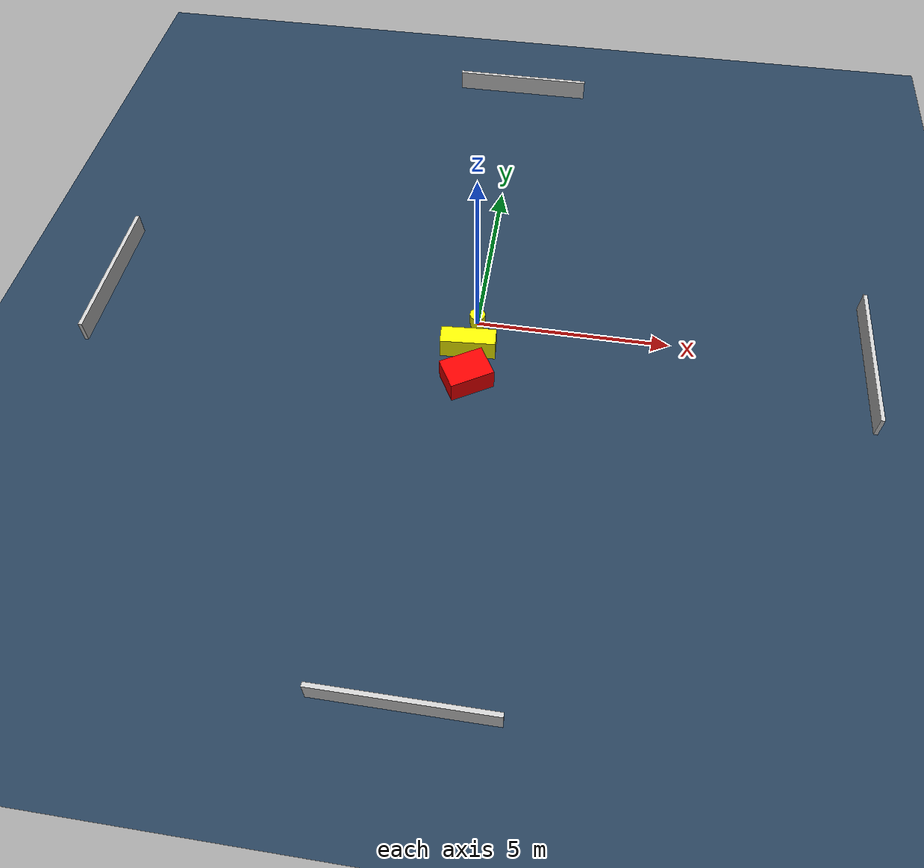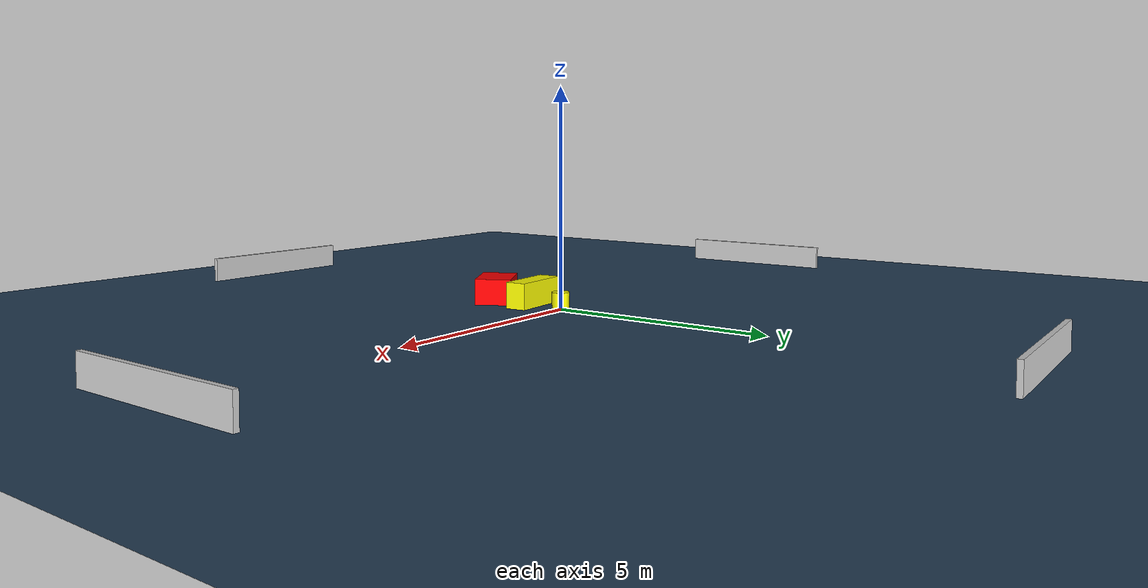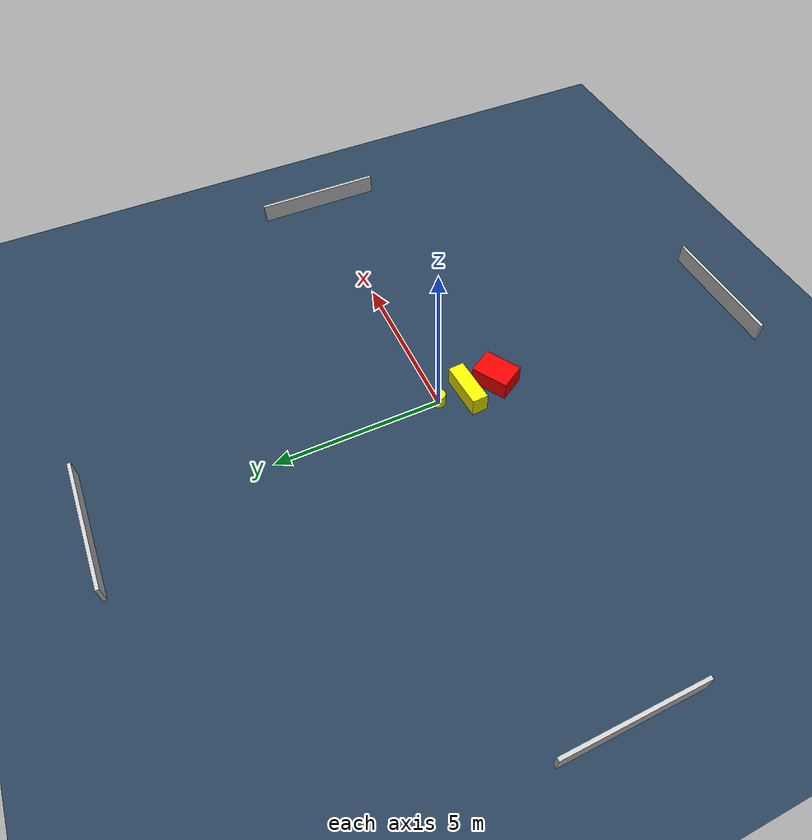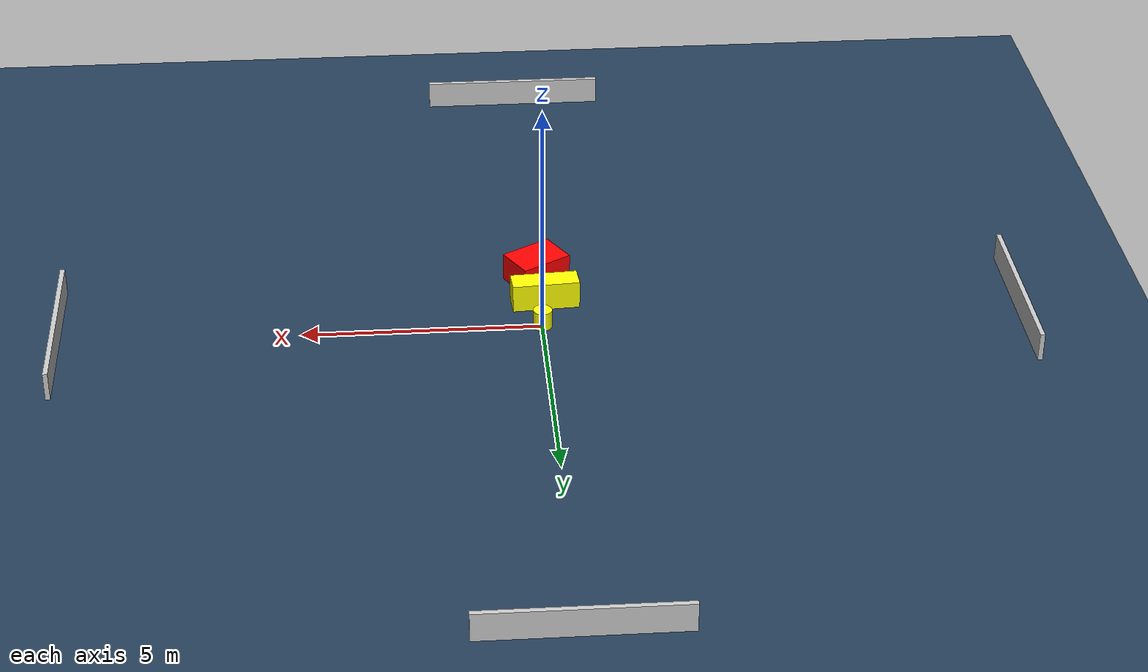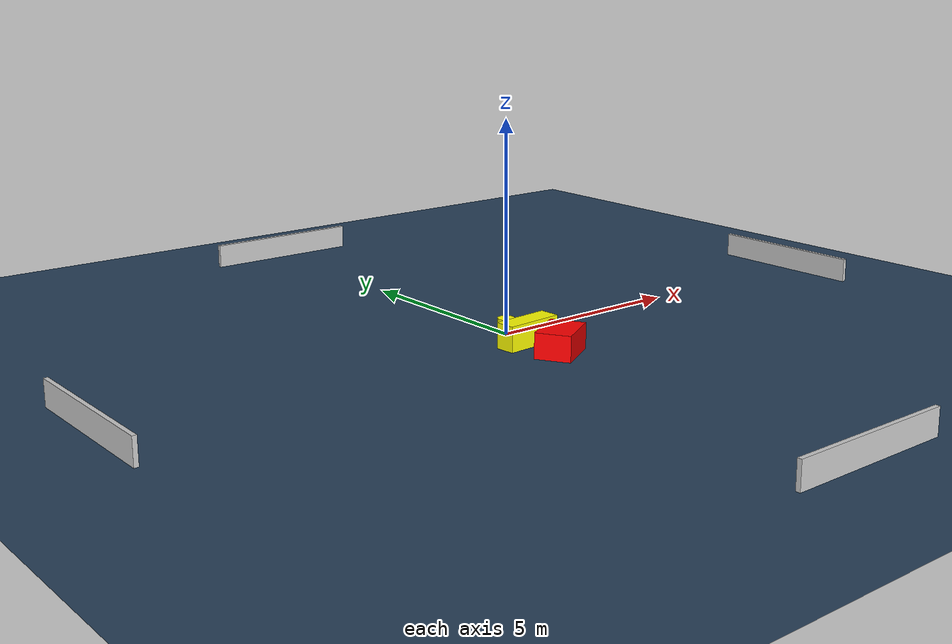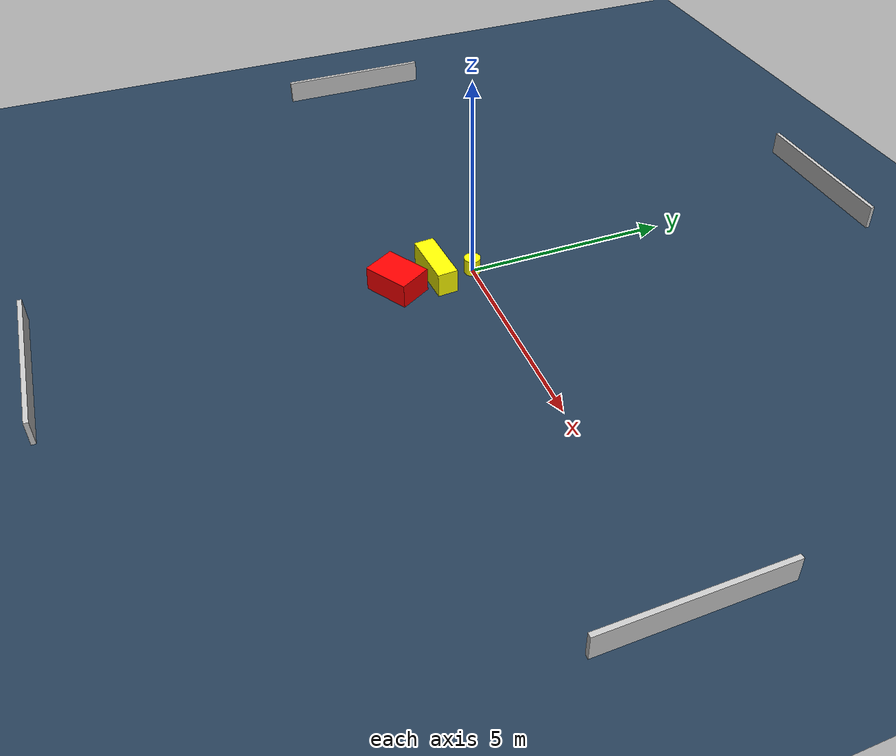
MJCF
<?xml version="1.0" ?>
<mujoco model="generated_environment">
  <option timestep="0.01" integrator="RK4" cone="elliptic"/>
  <default>
    <geom density="1"/>
  </default>
  <asset>
    <texture builtin="gradient" height="3072" name="skybox" rgb1="0.3 0.5 0.7" rgb2="0 0 0" type="skybox" width="512"/>
    <texture builtin="checker" height="300" name="groundplane" rgb1="0.2 0.3 0.4" rgb2="0.1 0.2 0.3" type="2d" width="300"/>
    <material name="groundplane" reflectance="0.2" texrepeat="5 5" texture="groundplane"/>
  </asset>
  <worldbody>
    <light dir="0 0 -1" directional="true" pos="0 0 1.5"/>
    <geom condim="3" friction="0.5 0.005 0.001" material="groundplane" name="floor" pos="0 0 0" size="0 0 0.05" type="plane"/>
    <body name="walls">
      <geom name="wall_1" condim="4" pos="-10.0 0.0 0.3" rgba="0.800000011920929 0.800000011920929 0.800000011920929 1.0" size="0.05 2.0 0.3" type="box"/>
      <geom name="wall_2" condim="4" pos="10.0 0.0 0.3" rgba="0.800000011920929 0.800000011920929 0.800000011920929 1.0" size="0.05 2.0 0.3" type="box"/>
      <geom name="wall_3" condim="4" pos="0.0 -10.0 0.3" rgba="0.800000011920929 0.800000011920929 0.800000011920929 1.0" size="2.0 0.05 0.3" type="box"/>
      <geom name="wall_4" condim="4" pos="0.0 10.0 0.3" rgba="0.800000011920929 0.800000011920929 0.800000011920929 1.0" size="2.0 0.05 0.3" type="box"/>
    </body>
    <body name="robot">
      <joint name="joint_x" type="slide" pos="0 0 0" axis="1 0 0"/>
      <joint name="joint_y" type="slide" pos="0 0 0" axis="0 1 0"/>
      <geom name="robot" type="cylinder" pos="0.0 0.0 0.2" size="0.2 0.2 0.0" mass="5.0" friction="1.0 0.005 0.0001" condim="4" rgba="1.0 1.0 0.0 1.0"/>
    </body>
    <body name="obstacle_1_movable">
      <geom name="obstacle_1_movable" condim="4" pos="-0.11018564262238881 -0.8841770537676937 0.3" euler="0 0 273.8567367563851" friction="0.0 0.005 0.001" rgba="1.0 1.0 0.0 1.0" size="0.24383296677195923 0.7048536773883229 0.3" type="box" mass="0.1"/>
      <joint type="free"/>
    </body>
    <body name="obstacle_2_static">
      <geom name="obstacle_2_static" condim="4" pos="-0.0012457953001921518 -1.8730898955280608 0.3" euler="0 0 300.6336005492487" friction="0.0 0.005 0.001" rgba="1.0 0.0 0.0 1.0" size="0.4153003587122922 0.5702120482833253 0.3" type="box"/>
    </body>
  </worldbody>
  <actuator>
    <motor name="actuator_x" joint="joint_x" gear="1" ctrlrange="-1 1"/>
    <motor name="actuator_y" joint="joint_y" gear="1" ctrlrange="-1 1"/>
  </actuator>
</mujoco>
